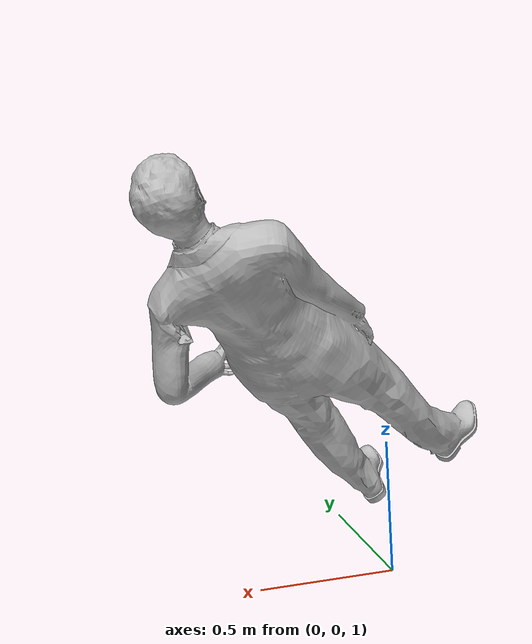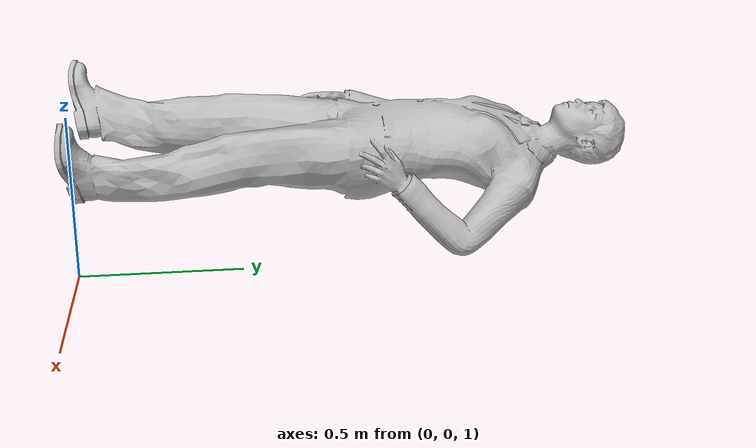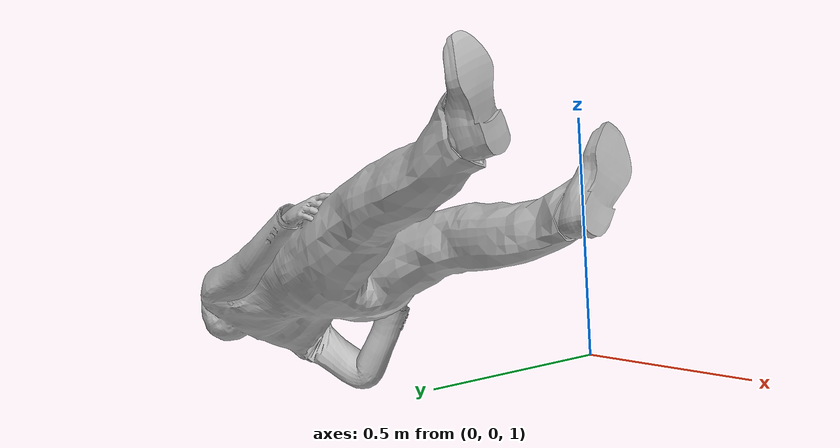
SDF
<?xml version="1.0" ?>
<sdf version="1.6">
  <model name="Human1">
    <static>true</static>
    <link name="link">

      <collision name="collision">
        <pose>0 0 0.8 0 0 0</pose>
        <geometry>
          <box>
            <size>0.36 0.52 1.6</size>
          </box>
        </geometry>
      </collision>

      <visual name="visual">
        <pose degrees="true">0 0 1.4 0 0 0</pose>
        <geometry>
          <mesh>
            <scale>1 1 1</scale>
            <uri>meshes/human1.dae</uri>
          </mesh>
        </geometry>
      </visual>

    </link>
  </model>
</sdf>
